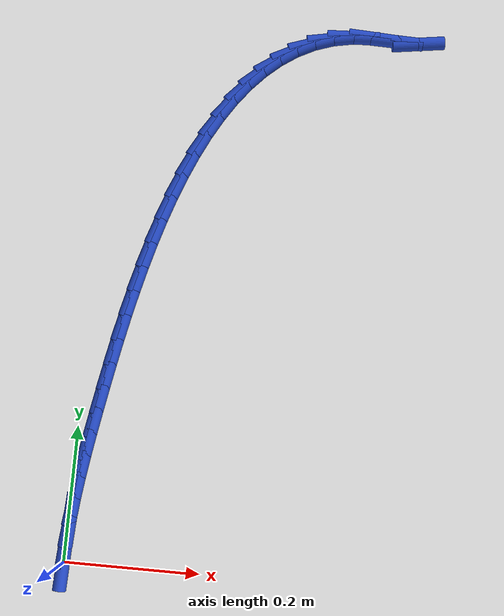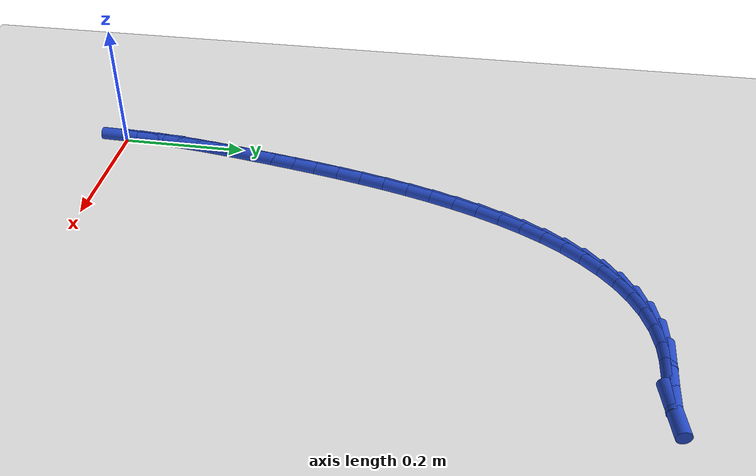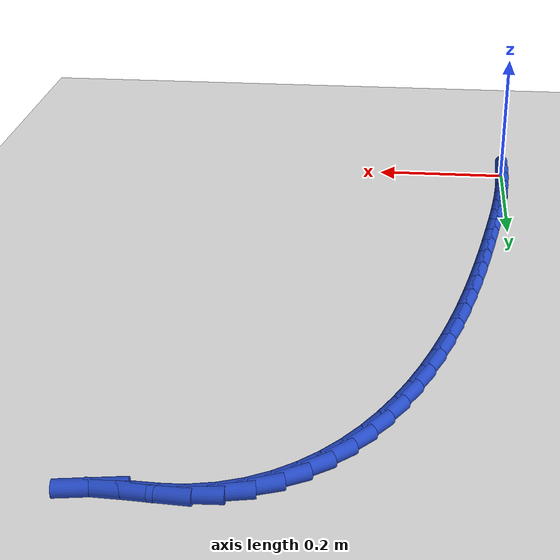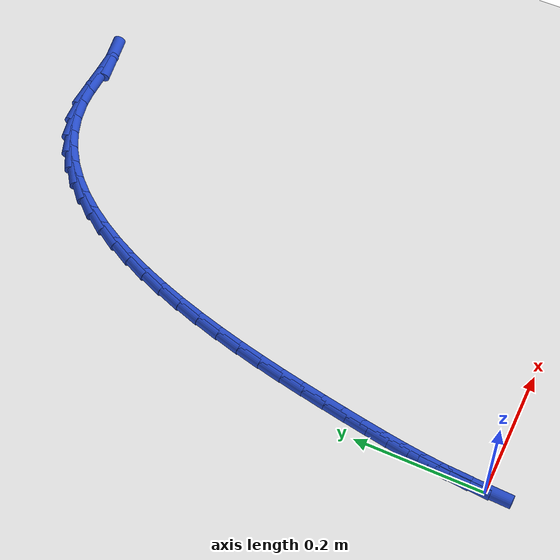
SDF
<sdf version="1.6">
 <world name="default">
  <model name="ground_plane">
   <static>1</static>
   <link name="link">
    <collision name="collision">
     <geometry><plane><normal>0 0 1</normal><size>100 100</size></plane></geometry>
     <surface><friction><ode><mu>100</mu><mu2>50</mu2></ode></friction></surface>
    </collision>
    <visual name="visual">
     <cast_shadows>0</cast_shadows>
     <geometry><plane><normal>0 0 1</normal><size>100 100</size></plane></geometry>
     <material>
      <script><uri>file://media/materials/scripts/gazebo.material</uri><name>Gazebo/WhiteGlow</name></script>
     </material>
    </visual>
   </link>
  </model>
  <model name="line">
   <link name="link_1">
    <pose>0.0011072280833253991 0.03146400764045911 0.01 0 1.57 1.5025603807263712</pose>
    <collision name="collision">
     <geometry><cylinder><radius>0.01</radius><length>0.08</length></cylinder></geometry>
    </collision>
    <visual name="visual">
     <material>
      <script><name>Gazebo/Blue</name><uri>file://media/materials/scripts/gazebo.material</uri></script>
     </material>
     <geometry><cylinder><radius>0.01</radius><length>0.08</length></cylinder></geometry>
    </visual>
   </link>
   <link name="link_2">
    <pose>0.003242141381773186 0.06270265682923397 0.01 0 1.57 1.4731487438103383</pose>
    <collision name="collision">
     <geometry><cylinder><radius>0.01</radius><length>0.08</length></cylinder></geometry>
    </collision>
    <visual name="visual">
     <material>
      <script><name>Gazebo/Blue</name><uri>file://media/materials/scripts/gazebo.material</uri></script>
     </material>
     <geometry><cylinder><radius>0.01</radius><length>0.08</length></cylinder></geometry>
    </visual>
   </link>
   <link name="link_3">
    <pose>0.006304133384892417 0.09396050914934653 0.01 0 1.57 1.4480577535225045</pose>
    <collision name="collision">
     <geometry><cylinder><radius>0.01</radius><length>0.08</length></cylinder></geometry>
    </collision>
    <visual name="visual">
     <material>
      <script><name>Gazebo/Blue</name><uri>file://media/materials/scripts/gazebo.material</uri></script>
     </material>
     <geometry><cylinder><radius>0.01</radius><length>0.08</length></cylinder></geometry>
    </visual>
   </link>
   <link name="link_4">
    <pose>0.010192597582232144 0.12548212618381874 0.01 0 1.57 1.4277177274706903</pose>
    <collision name="collision">
     <geometry><cylinder><radius>0.01</radius><length>0.08</length></cylinder></geometry>
    </collision>
    <visual name="visual">
     <material>
      <script><name>Gazebo/Blue</name><uri>file://media/materials/scripts/gazebo.material</uri></script>
     </material>
     <geometry><cylinder><radius>0.01</radius><length>0.08</length></cylinder></geometry>
    </visual>
   </link>
   <link name="link_5">
    <pose>0.014806927463341436 0.1575120695156726 0.01 0 1.57 1.4123095281165876</pose>
    <collision name="collision">
     <geometry><cylinder><radius>0.01</radius><length>0.08</length></cylinder></geometry>
    </collision>
    <visual name="visual">
     <material>
      <script><name>Gazebo/Blue</name><uri>file://media/materials/scripts/gazebo.material</uri></script>
     </material>
     <geometry><cylinder><radius>0.01</radius><length>0.08</length></cylinder></geometry>
    </visual>
   </link>
   <link name="link_6">
    <pose>0.020046516517769362 0.19029490072793018 0.01 0 1.57 1.401784941963018</pose>
    <collision name="collision">
     <geometry><cylinder><radius>0.01</radius><length>0.08</length></cylinder></geometry>
    </collision>
    <visual name="visual">
     <material>
      <script><name>Gazebo/Blue</name><uri>file://media/materials/scripts/gazebo.material</uri></script>
     </material>
     <geometry><cylinder><radius>0.01</radius><length>0.08</length></cylinder></geometry>
    </visual>
   </link>
   <link name="link_7">
    <pose>0.025810758235064953 0.22407518140361318 0.01 0 1.57 1.395241329125998</pose>
    <collision name="collision">
     <geometry><cylinder><radius>0.01</radius><length>0.08</length></cylinder></geometry>
    </collision>
    <visual name="visual">
     <material>
      <script><name>Gazebo/Blue</name><uri>file://media/materials/scripts/gazebo.material</uri></script>
     </material>
     <geometry><cylinder><radius>0.01</radius><length>0.08</length></cylinder></geometry>
    </visual>
   </link>
   <link name="link_8">
    <pose>0.03201500032406496 0.2590521031463418 0.01 0 1.57 1.3877374541404384</pose>
    <collision name="collision">
     <geometry><cylinder><radius>0.01</radius><length>0.08</length></cylinder></geometry>
    </collision>
    <visual name="visual">
     <material>
      <script><name>Gazebo/Blue</name><uri>file://media/materials/scripts/gazebo.material</uri></script>
     </material>
     <geometry><cylinder><radius>0.01</radius><length>0.08</length></cylinder></geometry>
    </visual>
   </link>
   <link name="link_9">
    <pose>0.038688677898970535 0.2951004202972108 0.01 0 1.57 1.3772761028116924</pose>
    <collision name="collision">
     <geometry><cylinder><radius>0.01</radius><length>0.08</length></cylinder></geometry>
    </collision>
    <visual name="visual">
     <material>
      <script><name>Gazebo/Blue</name><uri>file://media/materials/scripts/gazebo.material</uri></script>
     </material>
     <geometry><cylinder><radius>0.01</radius><length>0.08</length></cylinder></geometry>
    </visual>
   </link>
   <link name="link_10">
    <pose>0.04591090136471561 0.33195362256526384 0.01 0 1.57 1.3638559900483838</pose>
    <collision name="collision">
     <geometry><cylinder><radius>0.01</radius><length>0.08</length></cylinder></geometry>
    </collision>
    <visual name="visual">
     <material>
      <script><name>Gazebo/Blue</name><uri>file://media/materials/scripts/gazebo.material</uri></script>
     </material>
     <geometry><cylinder><radius>0.01</radius><length>0.08</length></cylinder></geometry>
    </visual>
   </link>
   <link name="link_11">
    <pose>0.053760985821885744 0.36934461755412595 0.01 0 1.57 1.3473756674026995</pose>
    <collision name="collision">
     <geometry><cylinder><radius>0.01</radius><length>0.08</length></cylinder></geometry>
    </collision>
    <visual name="visual">
     <material>
      <script><name>Gazebo/Blue</name><uri>file://media/materials/scripts/gazebo.material</uri></script>
     </material>
     <geometry><cylinder><radius>0.01</radius><length>0.08</length></cylinder></geometry>
    </visual>
   </link>
   <link name="link_12">
    <pose>0.062318246371066525 0.407006312867422 0.01 0 1.57 1.3276319570948611</pose>
    <collision name="collision">
     <geometry><cylinder><radius>0.01</radius><length>0.08</length></cylinder></geometry>
    </collision>
    <visual name="visual">
     <material>
      <script><name>Gazebo/Blue</name><uri>file://media/materials/scripts/gazebo.material</uri></script>
     </material>
     <geometry><cylinder><radius>0.01</radius><length>0.08</length></cylinder></geometry>
    </visual>
   </link>
   <link name="link_13">
    <pose>0.0716619981128435 0.44467161610877715 0.01 0 1.57 1.3043187774488274</pose>
    <collision name="collision">
     <geometry><cylinder><radius>0.01</radius><length>0.08</length></cylinder></geometry>
    </collision>
    <visual name="visual">
     <material>
      <script><name>Gazebo/Blue</name><uri>file://media/materials/scripts/gazebo.material</uri></script>
     </material>
     <geometry><cylinder><radius>0.01</radius><length>0.08</length></cylinder></geometry>
    </visual>
   </link>
   <link name="link_14">
    <pose>0.08187155614780228 0.48207343488181603 0.01 0 1.57 1.2770194887863693</pose>
    <collision name="collision">
     <geometry><cylinder><radius>0.01</radius><length>0.08</length></cylinder></geometry>
    </collision>
    <visual name="visual">
     <material>
      <script><name>Gazebo/Blue</name><uri>file://media/materials/scripts/gazebo.material</uri></script>
     </material>
     <geometry><cylinder><radius>0.01</radius><length>0.08</length></cylinder></geometry>
    </visual>
   </link>
   <link name="link_15">
    <pose>0.09302623557652838 0.518944676790164 0.01 0 1.57 1.2451938332940118</pose>
    <collision name="collision">
     <geometry><cylinder><radius>0.01</radius><length>0.08</length></cylinder></geometry>
    </collision>
    <visual name="visual">
     <material>
      <script><name>Gazebo/Blue</name><uri>file://media/materials/scripts/gazebo.material</uri></script>
     </material>
     <geometry><cylinder><radius>0.01</radius><length>0.08</length></cylinder></geometry>
    </visual>
   </link>
   <link name="link_16">
    <pose>0.10520535149960741 0.5550182494374458 0.01 0 1.57 1.20816061359871</pose>
    <collision name="collision">
     <geometry><cylinder><radius>0.01</radius><length>0.08</length></cylinder></geometry>
    </collision>
    <visual name="visual">
     <material>
      <script><name>Gazebo/Blue</name><uri>file://media/materials/scripts/gazebo.material</uri></script>
     </material>
     <geometry><cylinder><radius>0.01</radius><length>0.08</length></cylinder></geometry>
    </visual>
   </link>
   <link name="link_17">
    <pose>0.11848821901762494 0.5900270604272866 0.01 0 1.57 1.1650781755119517</pose>
    <collision name="collision">
     <geometry><cylinder><radius>0.01</radius><length>0.08</length></cylinder></geometry>
    </collision>
    <visual name="visual">
     <material>
      <script><name>Gazebo/Blue</name><uri>file://media/materials/scripts/gazebo.material</uri></script>
     </material>
     <geometry><cylinder><radius>0.01</radius><length>0.08</length></cylinder></geometry>
    </visual>
   </link>
   <link name="link_18">
    <pose>0.1329541532311665 0.623704017363311 0.01 0 1.57 1.1149270377797056</pose>
    <collision name="collision">
     <geometry><cylinder><radius>0.01</radius><length>0.08</length></cylinder></geometry>
    </collision>
    <visual name="visual">
     <material>
      <script><name>Gazebo/Blue</name><uri>file://media/materials/scripts/gazebo.material</uri></script>
     </material>
     <geometry><cylinder><radius>0.01</radius><length>0.08</length></cylinder></geometry>
    </visual>
   </link>
   <link name="link_19">
    <pose>0.1486824692408177 0.6557820278491443 0.01 0 1.57 1.0565035398696607</pose>
    <collision name="collision">
     <geometry><cylinder><radius>0.01</radius><length>0.08</length></cylinder></geometry>
    </collision>
    <visual name="visual">
     <material>
      <script><name>Gazebo/Blue</name><uri>file://media/materials/scripts/gazebo.material</uri></script>
     </material>
     <geometry><cylinder><radius>0.01</radius><length>0.08</length></cylinder></geometry>
    </visual>
   </link>
   <link name="link_20">
    <pose>0.16575248214716407 0.6859939994884112 0.01 0 1.57 0.9884413628576164</pose>
    <collision name="collision">
     <geometry><cylinder><radius>0.01</radius><length>0.08</length></cylinder></geometry>
    </collision>
    <visual name="visual">
     <material>
      <script><name>Gazebo/Blue</name><uri>file://media/materials/scripts/gazebo.material</uri></script>
     </material>
     <geometry><cylinder><radius>0.01</radius><length>0.08</length></cylinder></geometry>
    </visual>
   </link>
   <link name="link_21">
    <pose>0.18424350705079126 0.714072839884737 0.01 0 1.57 0.9092900071972095</pose>
    <collision name="collision">
     <geometry><cylinder><radius>0.01</radius><length>0.08</length></cylinder></geometry>
    </collision>
    <visual name="visual">
     <material>
      <script><name>Gazebo/Blue</name><uri>file://media/materials/scripts/gazebo.material</uri></script>
     </material>
     <geometry><cylinder><radius>0.01</radius><length>0.08</length></cylinder></geometry>
    </visual>
   </link>
   <link name="link_22">
    <pose>0.20423485905228478 0.7397514566417465 0.01 0 1.57 0.8176936238280965</pose>
    <collision name="collision">
     <geometry><cylinder><radius>0.01</radius><length>0.08</length></cylinder></geometry>
    </collision>
    <visual name="visual">
     <material>
      <script><name>Gazebo/Blue</name><uri>file://media/materials/scripts/gazebo.material</uri></script>
     </material>
     <geometry><cylinder><radius>0.01</radius><length>0.08</length></cylinder></geometry>
    </visual>
   </link>
   <link name="link_23">
    <pose>0.22580585325223013 0.7627627573630646 0.01 0 1.57 0.7127189926959602</pose>
    <collision name="collision">
     <geometry><cylinder><radius>0.01</radius><length>0.08</length></cylinder></geometry>
    </collision>
    <visual name="visual">
     <material>
      <script><name>Gazebo/Blue</name><uri>file://media/materials/scripts/gazebo.material</uri></script>
     </material>
     <geometry><cylinder><radius>0.01</radius><length>0.08</length></cylinder></geometry>
    </visual>
   </link>
   <link name="link_24">
    <pose>0.249035804751213 0.7828396496523163 0.01 0 1.57 0.5943503504112714</pose>
    <collision name="collision">
     <geometry><cylinder><radius>0.01</radius><length>0.08</length></cylinder></geometry>
    </collision>
    <visual name="visual">
     <material>
      <script><name>Gazebo/Blue</name><uri>file://media/materials/scripts/gazebo.material</uri></script>
     </material>
     <geometry><cylinder><radius>0.01</radius><length>0.08</length></cylinder></geometry>
    </visual>
   </link>
   <link name="link_25">
    <pose>0.27400402864981904 0.7997150411131269 0.01 0 1.57 0.46406244516968975</pose>
    <collision name="collision">
     <geometry><cylinder><radius>0.01</radius><length>0.08</length></cylinder></geometry>
    </collision>
    <visual name="visual">
     <material>
      <script><name>Gazebo/Blue</name><uri>file://media/materials/scripts/gazebo.material</uri></script>
     </material>
     <geometry><cylinder><radius>0.01</radius><length>0.08</length></cylinder></geometry>
    </visual>
   </link>
   <link name="link_26">
    <pose>0.3007898400486335 0.8131218393491207 0.01 0 1.57 0.32520464031983815</pose>
    <collision name="collision">
     <geometry><cylinder><radius>0.01</radius><length>0.08</length></cylinder></geometry>
    </collision>
    <visual name="visual">
     <material>
      <script><name>Gazebo/Blue</name><uri>file://media/materials/scripts/gazebo.material</uri></script>
     </material>
     <geometry><cylinder><radius>0.01</radius><length>0.08</length></cylinder></geometry>
    </visual>
   </link>
   <link name="link_27">
    <pose>0.32947255404824244 0.8227929519639237 0.01 0 1.57 0.18281924524928075</pose>
    <collision name="collision">
     <geometry><cylinder><radius>0.01</radius><length>0.08</length></cylinder></geometry>
    </collision>
    <visual name="visual">
     <material>
      <script><name>Gazebo/Blue</name><uri>file://media/materials/scripts/gazebo.material</uri></script>
     </material>
     <geometry><cylinder><radius>0.01</radius><length>0.08</length></cylinder></geometry>
    </visual>
   </link>
   <link name="link_28">
    <pose>0.36013148574923093 0.8284612865611597 0.01 0 1.57 0.04279982451097071</pose>
    <collision name="collision">
     <geometry><cylinder><radius>0.01</radius><length>0.08</length></cylinder></geometry>
    </collision>
    <visual name="visual">
     <material>
      <script><name>Gazebo/Blue</name><uri>file://media/materials/scripts/gazebo.material</uri></script>
     </material>
     <geometry><cylinder><radius>0.01</radius><length>0.08</length></cylinder></geometry>
    </visual>
   </link>
   <link name="link_29">
    <pose>0.3928445751106963 0.8298622565934949 0.01 0 1.57 -0.05627389448336072</pose>
    <collision name="collision">
     <geometry><cylinder><radius>0.01</radius><length>0.08</length></cylinder></geometry>
    </collision>
    <visual name="visual">
     <material>
      <script><name>Gazebo/Blue</name><uri>file://media/materials/scripts/gazebo.material</uri></script>
     </material>
     <geometry><cylinder><radius>0.01</radius><length>0.08</length></cylinder></geometry>
    </visual>
   </link>
   <link name="link_30">
    <pose>0.4270283291488365 0.8279365704734921 0.01 0 1.57 -0.035244935165371374</pose>
    <collision name="collision">
     <geometry><cylinder><radius>0.01</radius><length>0.08</length></cylinder></geometry>
    </collision>
    <visual name="visual">
     <material>
      <script><name>Gazebo/Blue</name><uri>file://media/materials/scripts/gazebo.material</uri></script>
     </material>
     <geometry><cylinder><radius>0.01</radius><length>0.08</length></cylinder></geometry>
    </visual>
   </link>
   <link name="link_31">
    <pose>0.46037845528958515 0.8267606604923128 0.01 0 1.57 0.1378733718860252</pose>
    <collision name="collision">
     <geometry><cylinder><radius>0.01</radius><length>0.08</length></cylinder></geometry>
    </collision>
    <visual name="visual">
     <material>
      <script><name>Gazebo/Blue</name><uri>file://media/materials/scripts/gazebo.material</uri></script>
     </material>
     <geometry><cylinder><radius>0.01</radius><length>0.08</length></cylinder></geometry>
    </visual>
   </link>
   <link name="link_270">
    <pose>-7.806255641895632e-18 1.5959455978986625e-16 0.01 0 1.57 1.5351696658309004</pose>
    <collision name="collision">
     <geometry><cylinder><radius>0.01</radius><length>0.08</length></cylinder></geometry>
    </collision>
    <visual name="visual">
     <material>
      <script><name>Gazebo/Blue</name><uri>file://media/materials/scripts/gazebo.material</uri></script>
     </material>
     <geometry><cylinder><radius>0.01</radius><length>0.08</length></cylinder></geometry>
    </visual>
   </link>
   <link name="link_271">
    <pose>0.0011191024838813537 0.03139864743392008 0.01 0 1.57 1.4988624109888389</pose>
    <collision name="collision">
     <geometry><cylinder><radius>0.01</radius><length>0.08</length></cylinder></geometry>
    </collision>
    <visual name="visual">
     <material>
      <script><name>Gazebo/Blue</name><uri>file://media/materials/scripts/gazebo.material</uri></script>
     </material>
     <geometry><cylinder><radius>0.01</radius><length>0.08</length></cylinder></geometry>
    </visual>
   </link>
   <link name="link_272">
    <pose>0.003337136586220677 0.06217977517691729 0.01 0 1.57 1.5171786025466079</pose>
    <collision name="collision">
     <geometry><cylinder><radius>0.01</radius><length>0.08</length></cylinder></geometry>
    </collision>
    <visual name="visual">
     <material>
      <script><name>Gazebo/Blue</name><uri>file://media/materials/scripts/gazebo.material</uri></script>
     </material>
     <geometry><cylinder><radius>0.01</radius><length>0.08</length></cylinder></geometry>
    </visual>
   </link>
  </model>
 </world>
</sdf>
